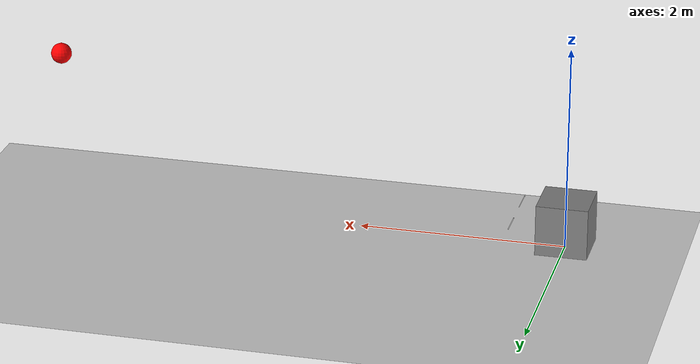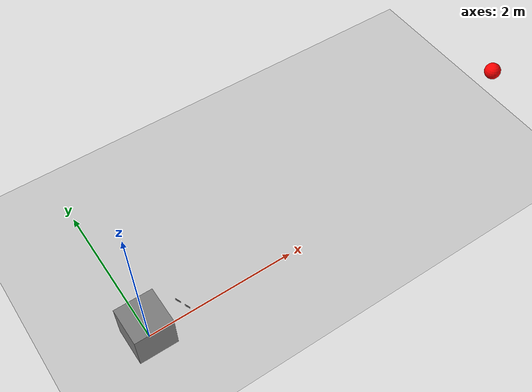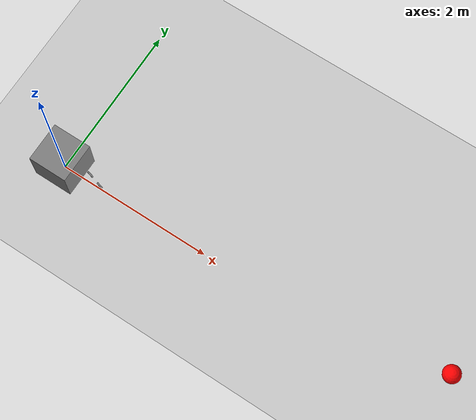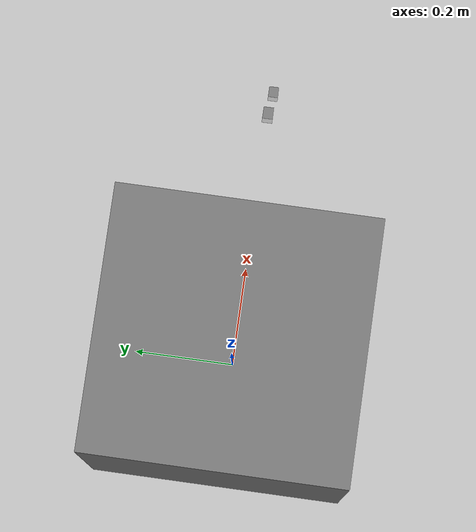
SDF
<sdf version="1.6">
 <world name="camera_sensor">
  <physics name="1ms" type="ignored">
   <max_step_size>0.001</max_step_size>
   <real_time_factor>1.0</real_time_factor>
  </physics>
  <plugin filename="ignition-gazebo-physics-system" name="gz::sim::systems::Physics"/>
  <plugin filename="ignition-gazebo-sensors-system" name="gz::sim::systems::Sensors">
   <render_engine>ogre</render_engine>
  </plugin>
  <plugin filename="ignition-gazebo-user-commands-system" name="gz::sim::systems::UserCommands"/>
  <plugin filename="ignition-gazebo-scene-broadcaster-system" name="gz::sim::systems::SceneBroadcaster"/>
  <scene><ambient>1.0 1.0 1.0</ambient><background>0.8 0.8 0.8</background><grid>true</grid></scene>
  <light type="spot" name="ceiling_light">
   <pose>0 0 5 0 0 0</pose>
   <diffuse>0.9 0.8 0.7 1</diffuse>
   <specular>0.3 0.3 0.3 1</specular>
   <attenuation>
    <range>20</range>
    <constant>1.0</constant>
    <linear>0.1</linear>
    <quadratic>0.02</quadratic>
   </attenuation>
   <direction>0 0 -1</direction>
   <spot><inner_angle>45</inner_angle><outer_angle>60</outer_angle><falloff>1.0</falloff></spot>
  </light>
  <light type="point" name="ambient_light">
   <cast_shadows>false</cast_shadows>
   <pose>0 0 3 0 0 0</pose>
   <diffuse>0.3 0.3 0.3 1</diffuse>
   <specular>0 0 0 1</specular>
   <attenuation>
    <range>30</range>
    <constant>1.0</constant>
    <linear>0.05</linear>
    <quadratic>0.01</quadratic>
   </attenuation>
  </light>
  <model name="ground_plane">
   <static>true</static>
   <link name="link">
    <collision name="collision">
     <geometry><plane><normal>0 0 1</normal><size>100 100</size></plane></geometry>
    </collision>
    <visual name="visual">
     <geometry><plane><normal>0 0 1</normal><size>100 100</size></plane></geometry>
     <material>
      <ambient>0.8 0.8 0.8 1</ambient>
      <diffuse>0.8 0.8 0.8 1</diffuse>
      <specular>0.8 0.8 0.8 1</specular>
     </material>
    </visual>
   </link>
  </model>
  <model name="box">
   <pose>0 0 0.25 0 0 0</pose>
   <link name="box_link">
    <inertial>
     <inertia><ixx>0.16666</ixx><ixy>0</ixy><ixz>0</ixz><iyy>0.16666</iyy><iyz>0</iyz><izz>0.16666</izz></inertia>
     <mass>1.0</mass>
    </inertial>
    <collision name="box_collision"><geometry><box><size>0.5 0.5 0.5</size></box></geometry></collision>
    <visual name="box_visual">
     <geometry><box><size>0.5 0.5 0.5</size></box></geometry>
     <material>
      <ambient>0.5 0.5 0.5 1</ambient>
      <diffuse>0.5 0.5 0.5 1</diffuse>
      <specular>0.6 0.6 0.6 1</specular>
     </material>
    </visual>
   </link>
  </model>
  <model name="left_camera">
   <static>true</static>
   <pose>0.430906 -0.00911806 0.423643 1.5885 -0.3988 0.0029</pose>
   <link name="link">
    <inertial>
     <mass>0.0615752</mass>
     <inertia><ixx>9.108e-05</ixx><iyy>2.51e-06</iyy><izz>8.931e-05</izz></inertia>
    </inertial>
    <collision name="collision"><geometry><box><size>0.0078 0.130 0.0192</size></box></geometry></collision>
    <visual name="visual"><geometry><box><size>0.0078 0.130 0.0192</size></box></geometry></visual>
    <sensor name="lergbd_cameraft_camera" type="rgbd_camera">
     <camera>
      <clip><near>0.1</near><far>100</far></clip>
      <noise><type>gaussian</type><mean>0.0</mean><stddev>0.007</stddev></noise>
     </camera>
     <always_on>1</always_on>
     <update_rate>60</update_rate>
     <visualize>true</visualize>
     <topic>left_camera</topic>
     <enable_metrics>true</enable_metrics>
    </sensor>
    <sensor name="thermal_camera" type="thermal_camera">
     <camera>
      <horizontal_fov>1.047</horizontal_fov>
      <image><width>320</width><height>240</height></image>
      <clip><near>0.1</near><far>100</far></clip>
     </camera>
     <always_on>1</always_on>
     <update_rate>30</update_rate>
     <visualize>true</visualize>
     <topic>thermal_camera_left</topic>
    </sensor>
   </link>
  </model>
  <model name="right_camera">
   <static>true</static>
   <pose>0.530906 -0.00911806 0.183643 1.5885 -0.3988 0.0029</pose>
   <link name="link">
    <inertial>
     <mass>0.0615752</mass>
     <inertia><ixx>9.108e-05</ixx><iyy>2.51e-06</iyy><izz>8.931e-05</izz></inertia>
    </inertial>
    <collision name="collision"><geometry><box><size>0.0078 0.130 0.0192</size></box></geometry></collision>
    <visual name="visual"><geometry><box><size>0.0078 0.130 0.0192</size></box></geometry></visual>
    <sensor name="rgbd_camera" type="rgbd_camera">
     <camera>
      <clip><near>0.1</near><far>100</far></clip>
      <noise><type>gaussian</type><mean>0.0</mean><stddev>0.007</stddev></noise>
     </camera>
     <always_on>1</always_on>
     <update_rate>60</update_rate>
     <visualize>true</visualize>
     <topic>right_camera</topic>
     <enable_metrics>true</enable_metrics>
    </sensor>
    <sensor name="thermal_camera" type="thermal_camera">
     <camera>
      <horizontal_fov>1.047</horizontal_fov>
      <image><width>320</width><height>240</height></image>
      <clip><near>0.1</near><far>100</far></clip>
     </camera>
     <always_on>1</always_on>
     <update_rate>30</update_rate>
     <visualize>true</visualize>
     <topic>thermal_camera_right</topic>
    </sensor>
   </link>
  </model>
  <model name="ball">
   <pose>5 0 1.5 0 0 0</pose>
   <link name="ball_link">
    <inertial>
     <inertia><ixx>0.5</ixx><ixy>0</ixy><ixz>0</ixz><iyy>0.5</iyy><iyz>0</iyz><izz>0.5</izz></inertia>
     <mass>0.5</mass>
    </inertial>
    <collision name="ball_collision"><geometry><sphere><radius>0.1</radius></sphere></geometry></collision>
    <visual name="ball_visual">
     <geometry><sphere><radius>0.1</radius></sphere></geometry>
     <material><ambient>1 0 0 1</ambient><diffuse>1 0 0 1</diffuse><specular>1 0 0 1</specular></material>
    </visual>
   </link>
   <plugin name="ball_velocity" filename="ignition-gazebo-linear-velocity-system">
    <linear_velocity>-1 0 0</linear_velocity>
   </plugin>
  </model>
 </world>
</sdf>
